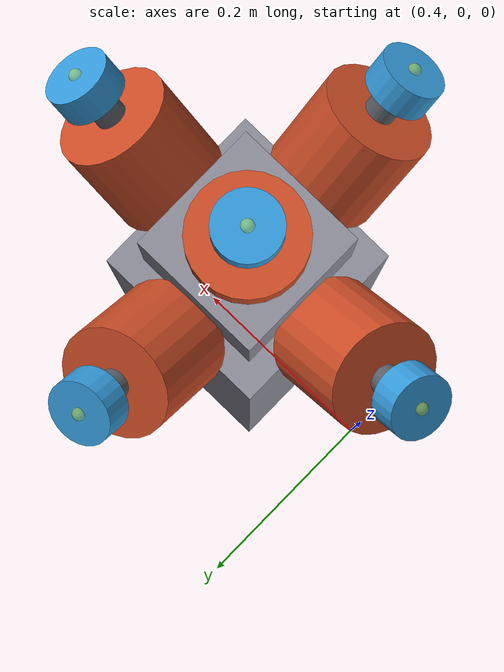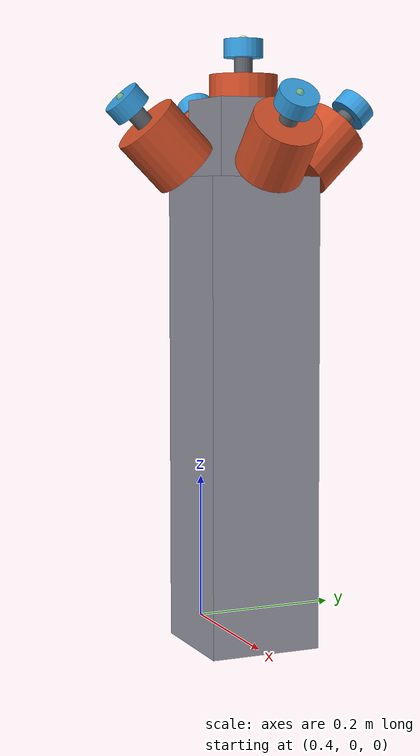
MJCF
<mujoco model="torre_botones">

  <default>
    <default class="torre_post">
      <geom type="box" rgba="0.55 0.55 0.60 1" condim="3" friction="1 0.005 0.0001"/>
    </default>
    <!-- montura: naranja, como obs_hall del maze -->
    <default class="torre_hub">
      <geom type="cylinder" rgba="0.80 0.30 0.15 1" condim="3" friction="1 0.005 0.0001"/>
    </default>
    <!-- vastago: SOLO visual. Si colisionara chocaria con su montura. -->
    <default class="torre_stem">
      <geom type="cylinder" rgba="0.35 0.37 0.40 1" contype="0" conaffinity="0" group="1"/>
    </default>
    <!-- cabeza presionable: azul, como obs_door del maze -->
    <default class="torre_head">
      <geom type="cylinder" rgba="0.20 0.60 0.85 1" condim="4" friction="2.0 0.02 0.001"/>
    </default>
    <default class="torre_joint">
      <joint type="slide" axis="0 0 -1" limited="true" range="0 0.018"
             stiffness="500" springref="0" damping="3" armature="0.001"
             solreflimit="0.002 1" solimplimit="0.99 0.999 0.001"/>
    </default>
  </default>

  <worldbody>
    <body name="torre_botones" pos="0.55 0 0">

      <!-- Poste. En el maze el pedestal es parte de la malla base_link del
           laberinto; aqui la torre es autonoma y lleva el suyo. -->
      <geom name="torre_post"  class="torre_post" size="0.075 0.075 0.310" pos="0 0 0.310"/>
      <geom name="torre_core"  class="torre_post" size="0.055 0.055 0.055" pos="0 0 0.6656"/>

      <!-- ── BOTON 0 — -X, a 45 grados (≙ hub_8/door_8): el que MIRA AL ROBOT ── -->
      <body name="boton_0" pos="-0.1156 0 0.6656" quat="0.9238795 0 -0.3826834 0">
        <geom name="boton_0_hub"  class="torre_hub"  size="0.045 0.040" pos="0 0 -0.010"/>
        <body name="boton_0_head_body">
          <joint name="boton_0_slide" class="torre_joint"/>
          <geom name="boton_0_stem" class="torre_stem" size="0.012 0.011" pos="0 0 0.041"/>
          <geom name="boton_0_head" class="torre_head" size="0.026 0.012" pos="0 0 0.064"/>
          <site name="boton_0_target" pos="0 0 0.076" size="0.005" rgba="1 1 0 0.35"/>
        </body>
      </body>

      <!-- ── BOTON 1 — +Y, a 45 grados (≙ hub_11/door_11) ── -->
      <body name="boton_1" pos="0 0.1156 0.6656" quat="0.9238795 -0.3826834 0 0">
        <geom name="boton_1_hub"  class="torre_hub"  size="0.045 0.040" pos="0 0 -0.010"/>
        <body name="boton_1_head_body">
          <joint name="boton_1_slide" class="torre_joint"/>
          <geom name="boton_1_stem" class="torre_stem" size="0.012 0.011" pos="0 0 0.041"/>
          <geom name="boton_1_head" class="torre_head" size="0.026 0.012" pos="0 0 0.064"/>
          <site name="boton_1_target" pos="0 0 0.076" size="0.005" rgba="1 1 0 0.35"/>
        </body>
      </body>

      <!-- ── BOTON 2 — -Y, a 45 grados (≙ hub_9/door_9) ── -->
      <body name="boton_2" pos="0 -0.1156 0.6656" quat="0.9238795 0.3826834 0 0">
        <geom name="boton_2_hub"  class="torre_hub"  size="0.045 0.040" pos="0 0 -0.010"/>
        <body name="boton_2_head_body">
          <joint name="boton_2_slide" class="torre_joint"/>
          <geom name="boton_2_stem" class="torre_stem" size="0.012 0.011" pos="0 0 0.041"/>
          <geom name="boton_2_head" class="torre_head" size="0.026 0.012" pos="0 0 0.064"/>
          <site name="boton_2_target" pos="0 0 0.076" size="0.005" rgba="1 1 0 0.35"/>
        </body>
      </body>

      <!-- ── BOTON 3 — +Z, vertical (≙ hub_7/door_7): el de la cuspide ── -->
      <body name="boton_3" pos="0 0 0.7220">
        <geom name="boton_3_hub"  class="torre_hub"  size="0.045 0.040" pos="0 0 -0.010"/>
        <body name="boton_3_head_body">
          <joint name="boton_3_slide" class="torre_joint"/>
          <geom name="boton_3_stem" class="torre_stem" size="0.012 0.011" pos="0 0 0.041"/>
          <geom name="boton_3_head" class="torre_head" size="0.026 0.012" pos="0 0 0.064"/>
          <site name="boton_3_target" pos="0 0 0.076" size="0.005" rgba="1 1 0 0.35"/>
        </body>
      </body>

      <!-- ── BOTON 4 — +X, a 45 grados (≙ hub_10/door_10): LADO OPUESTO al robot ── -->
      <body name="boton_4" pos="0.1156 0 0.6656" quat="0.9238795 0 0.3826834 0">
        <geom name="boton_4_hub"  class="torre_hub"  size="0.045 0.040" pos="0 0 -0.010"/>
        <body name="boton_4_head_body">
          <joint name="boton_4_slide" class="torre_joint"/>
          <geom name="boton_4_stem" class="torre_stem" size="0.012 0.011" pos="0 0 0.041"/>
          <geom name="boton_4_head" class="torre_head" size="0.026 0.012" pos="0 0 0.064"/>
          <site name="boton_4_target" pos="0 0 0.076" size="0.005" rgba="1 1 0 0.35"/>
        </body>
      </body>

    </body>
  </worldbody>

  <contact>
    <exclude body1="boton_0" body2="boton_0_head_body"/>
    <exclude body1="boton_1" body2="boton_1_head_body"/>
    <exclude body1="boton_2" body2="boton_2_head_body"/>
    <exclude body1="boton_3" body2="boton_3_head_body"/>
    <exclude body1="boton_4" body2="boton_4_head_body"/>
  </contact>

  <sensor>
    <jointpos name="boton_0_pos" joint="boton_0_slide"/>
    <jointpos name="boton_1_pos" joint="boton_1_slide"/>
    <jointpos name="boton_2_pos" joint="boton_2_slide"/>
    <jointpos name="boton_3_pos" joint="boton_3_slide"/>
    <jointpos name="boton_4_pos" joint="boton_4_slide"/>
  </sensor>
</mujoco>
